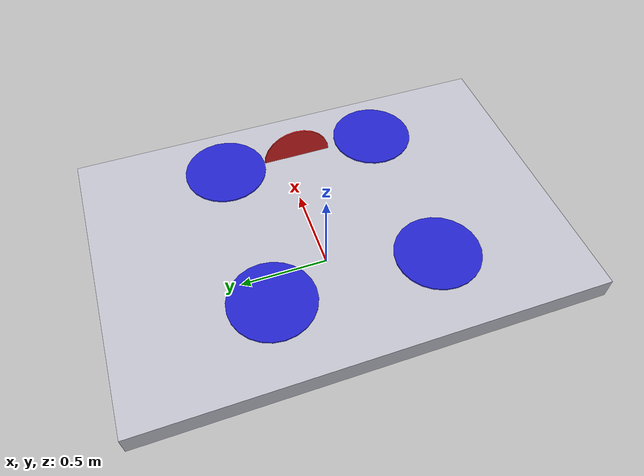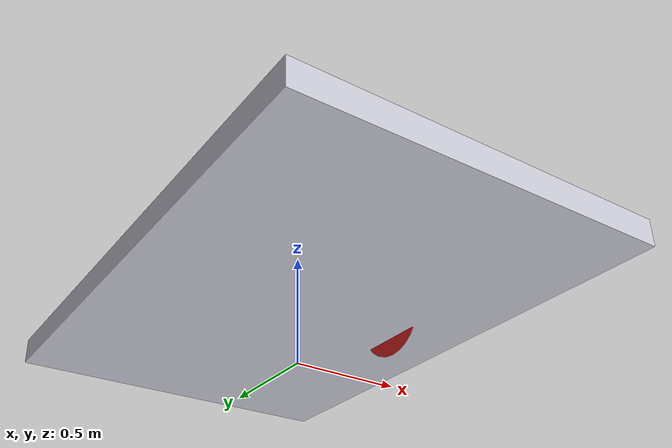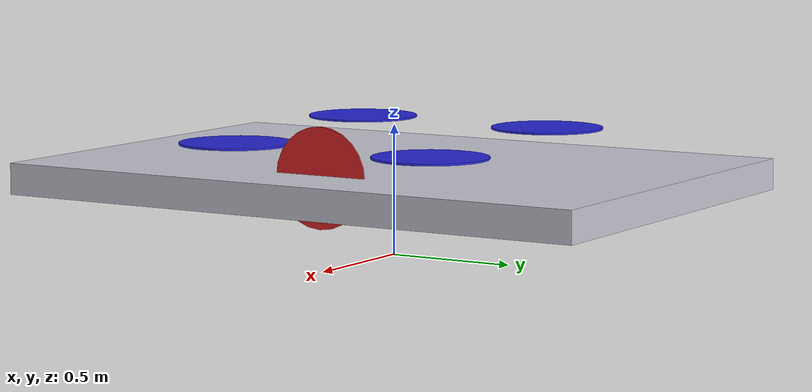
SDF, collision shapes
<?xml version="1.0"?>
<!-- Quadplane Condor: 4+1 tractor, V-tail, 7.8kg MTOW, 2.4m wingspan -->
<!-- Sub-millimeter 3D circle fitting on CAD motor mounts and spinner shaft -->
<sdf version='1.10'>
  <model name='quadplane_condor'>
    <!-- Spawn height above ground -->
    <pose>0 0 0.35 0 0 0</pose>

    <!-- BASE LINK (Fuselage, Wing, Booms & Motor Mounts from CAD)    -->
    <link name='base_link'>
      <pose>0 0 0 0 0 0</pose>
      <inertial>
        <pose>0 0 0 0 0 0</pose>
        <mass>7.8</mass>
        <inertia>
          <ixx>1.46</ixx>
          <ixy>0</ixy>
          <ixz>0</ixz>
          <iyy>1.06</iyy>
          <iyz>0</iyz>
          <izz>2.50</izz>
        </inertia>
      </inertial>

      <!-- Collision body matching Condor dimensions -->
      <collision name='base_link_collision'>
        <pose>0 0 -0.05 0 0 0</pose>
        <geometry>
          <box>
            <size>1.64 2.40 0.12</size>
          </box>
        </geometry>
        <surface>
          <contact>
            <ode>
              <kp>100000</kp>
              <kd>1.0</kd>
              <max_vel>0.1</max_vel>
              <min_depth>0.001</min_depth>
            </ode>
          </contact>
          <friction>
            <ode />
          </friction>
        </surface>
      </collision>

      <!-- Visual: Condor 3D CAD Mesh (Scale 1.0, exact CAD center alignment) -->
      <visual name='base_link_visual'>
        <pose>0.4221 0.0 -0.0050 1.5707963268 0 1.5707963268</pose>
        <geometry>
          <mesh>
            <scale>1.0 1.0 1.0</scale>
            <uri>model://quadplane_condor/meshes/quadplane_condor.dae</uri>
          </mesh>
        </geometry>
        <material>
          <ambient>0.8 0.8 0.85 1.0</ambient>
          <diffuse>0.8 0.8 0.85 1.0</diffuse>
          <specular>0.4 0.4 0.4 1.0</specular>
        </material>
      </visual>

      <gravity>1</gravity>
      <velocity_decay />
      <self_collide>0</self_collide>

      <!-- SENSORS                                                      -->
      <sensor name="imu_sensor" type="imu">
        <gz_frame_id>base_link</gz_frame_id>
        <always_on>1</always_on>
        <update_rate>250</update_rate>
        <imu>
          <angular_velocity>
            <x>
              <noise type="gaussian">
                <mean>0</mean>
                <stddev>0.0003394</stddev>
                <dynamic_bias_stddev>3.8785e-05</dynamic_bias_stddev>
                <dynamic_bias_correlation_time>1000</dynamic_bias_correlation_time>
              </noise>
            </x>
            <y>
              <noise type="gaussian">
                <mean>0</mean>
                <stddev>0.0003394</stddev>
                <dynamic_bias_stddev>3.8785e-05</dynamic_bias_stddev>
                <dynamic_bias_correlation_time>1000</dynamic_bias_correlation_time>
              </noise>
            </y>
            <z>
              <noise type="gaussian">
                <mean>0</mean>
                <stddev>0.0003394</stddev>
                <dynamic_bias_stddev>3.8785e-05</dynamic_bias_stddev>
                <dynamic_bias_correlation_time>1000</dynamic_bias_correlation_time>
              </noise>
            </z>
          </angular_velocity>
          <linear_acceleration>
            <x>
              <noise type="gaussian">
                <mean>0</mean>
                <stddev>0.004</stddev>
                <dynamic_bias_stddev>0.006</dynamic_bias_stddev>
                <dynamic_bias_correlation_time>300</dynamic_bias_correlation_time>
              </noise>
            </x>
            <y>
              <noise type="gaussian">
                <mean>0</mean>
                <stddev>0.004</stddev>
                <dynamic_bias_stddev>0.006</dynamic_bias_stddev>
                <dynamic_bias_correlation_time>300</dynamic_bias_correlation_time>
              </noise>
            </y>
            <z>
              <noise type="gaussian">
                <mean>0</mean>
                <stddev>0.004</stddev>
                <dynamic_bias_stddev>0.006</dynamic_bias_stddev>
                <dynamic_bias_correlation_time>300</dynamic_bias_correlation_time>
              </noise>
            </z>
          </linear_acceleration>
        </imu>
      </sensor>

      <sensor name="air_pressure_sensor" type="air_pressure">
        <gz_frame_id>base_link</gz_frame_id>
        <always_on>1</always_on>
        <update_rate>50</update_rate>
        <air_pressure>
          <pressure>
            <noise type="gaussian">
              <mean>0</mean>
              <stddev>0.01</stddev>
            </noise>
          </pressure>
        </air_pressure>
      </sensor>

      <sensor name="magnetometer_sensor" type="magnetometer">
        <gz_frame_id>base_link</gz_frame_id>
        <always_on>1</always_on>
        <update_rate>100</update_rate>
        <magnetometer>
          <x>
            <noise type="gaussian">
              <stddev>0.0001</stddev>
            </noise>
          </x>
          <y>
            <noise type="gaussian">
              <stddev>0.0001</stddev>
            </noise>
          </y>
          <z>
            <noise type="gaussian">
              <stddev>0.0001</stddev>
            </noise>
          </z>
        </magnetometer>
      </sensor>

      <sensor name="navsat_sensor" type="navsat">
        <gz_frame_id>base_link</gz_frame_id>
        <always_on>1</always_on>
        <update_rate>30</update_rate>
      </sensor>
    </link>

    <!-- AIRSPEED PITOT SENSOR LINK (Native GZ differential pressure) -->
    <link name="airspeed_link">
      <pose relative_to="base_link">0.52 0 0.05 0 0 0</pose>
      <inertial>
        <mass>0.005</mass>
        <inertia>
          <ixx>1e-06</ixx>
          <ixy>0</ixy>
          <ixz>0</ixz>
          <iyy>1e-06</iyy>
          <iyz>0</iyz>
          <izz>1e-06</izz>
        </inertia>
      </inertial>
      <sensor name="air_speed" type="air_speed">
        <gz_frame_id>airspeed_link</gz_frame_id>
        <pose>0 0 0 0 0 0</pose>
        <update_rate>50.0</update_rate>
        <always_on>1</always_on>
        <visualize>false</visualize>
        <air_speed>
          <noise type="gaussian">
            <mean>0</mean>
            <stddev>0.005</stddev>
          </noise>
        </air_speed>
      </sensor>
    </link>

    <joint name="airspeed_joint" type="fixed">
      <parent>base_link</parent>
      <child>airspeed_link</child>
    </joint>

    <!-- QUAD ROTOR 0: Front-Right Motor (17-inch CCW Propeller)      -->
    <!-- CAD Mount Center: X = +0.4416m, Y = -0.4236m, Z = +0.0959m   -->
    <!-- Prop diameter: 43.2cm (17 in), Radius: 0.216m                -->
    <link name='rotor_0'>
      <pose>0.4416 -0.4236 0.0959 0 0 0</pose>
      <inertial>
        <pose>0 0 0 0 0 0</pose>
        <mass>0.005</mass>
        <inertia>
          <ixx>9.75e-07</ixx>
          <ixy>0</ixy>
          <ixz>0</ixz>
          <iyy>0.000166704</iyy>
          <iyz>0</iyz>
          <izz>0.000167604</izz>
        </inertia>
      </inertial>
      <collision name='rotor_0_collision'>
        <pose>0 0 0 0 0 0</pose>
        <geometry>
          <cylinder><length>0.008</length><radius>0.216</radius></cylinder>
        </geometry>
        <surface>
          <contact><ode /></contact>
          <friction><ode /></friction>
        </surface>
      </collision>
      <visual name='rotor_0_visual'>
        <pose>0 0 0 0 0 0</pose>
        <geometry>
          <mesh>
            <scale>1.8 1.8 1.8</scale>
            <uri>model://quadplane_condor/meshes/iris_prop_ccw.dae</uri>
          </mesh>
        </geometry>
        <material>
          <ambient>0.15 0.15 0.85 1.0</ambient>
          <diffuse>0.15 0.15 0.85 1.0</diffuse>
        </material>
      </visual>
      <gravity>1</gravity>
      <velocity_decay />
      <self_collide>0</self_collide>
    </link>
    <joint name='rotor_0_joint' type='revolute'>
      <child>rotor_0</child>
      <parent>base_link</parent>
      <axis>
        <xyz>0 0 1</xyz>
        <limit>
          <lower>-1e+16</lower>
          <upper>1e+16</upper>
        </limit>
        <dynamics>
          <spring_reference>0</spring_reference>
          <spring_stiffness>0</spring_stiffness>
        </dynamics>
      </axis>
    </joint>

    <!-- QUAD ROTOR 1: Rear-Left Motor (17-inch CCW Propeller)        -->
    <!-- CAD Mount Center: X = -0.4428m, Y = +0.4192m, Z = +0.1183m   -->
    <!-- Prop diameter: 43.2cm (17 in), Radius: 0.216m                -->
    <link name='rotor_1'>
      <pose>-0.4428 0.4192 0.1183 0 0 0</pose>
      <inertial>
        <pose>0 0 0 0 0 0</pose>
        <mass>0.005</mass>
        <inertia>
          <ixx>9.75e-07</ixx>
          <ixy>0</ixy>
          <ixz>0</ixz>
          <iyy>0.000166704</iyy>
          <iyz>0</iyz>
          <izz>0.000167604</izz>
        </inertia>
      </inertial>
      <collision name='rotor_1_collision'>
        <pose>0 0 0 0 0 0</pose>
        <geometry>
          <cylinder><length>0.008</length><radius>0.216</radius></cylinder>
        </geometry>
        <surface>
          <contact><ode /></contact>
          <friction><ode /></friction>
        </surface>
      </collision>
      <visual name='rotor_1_visual'>
        <pose>0 0 0 0 0 0</pose>
        <geometry>
          <mesh>
            <scale>1.8 1.8 1.8</scale>
            <uri>model://quadplane_condor/meshes/iris_prop_ccw.dae</uri>
          </mesh>
        </geometry>
        <material>
          <ambient>0.15 0.15 0.85 1.0</ambient>
          <diffuse>0.15 0.15 0.85 1.0</diffuse>
        </material>
      </visual>
      <gravity>1</gravity>
      <velocity_decay />
      <self_collide>0</self_collide>
    </link>
    <joint name='rotor_1_joint' type='revolute'>
      <child>rotor_1</child>
      <parent>base_link</parent>
      <axis>
        <xyz>0 0 1</xyz>
        <limit>
          <lower>-1e+16</lower>
          <upper>1e+16</upper>
        </limit>
        <dynamics>
          <spring_reference>0</spring_reference>
          <spring_stiffness>0</spring_stiffness>
        </dynamics>
      </axis>
    </joint>

    <!-- QUAD ROTOR 2: Front-Left Motor (17-inch CW Propeller)        -->
    <!-- CAD Mount Center: X = +0.4416m, Y = +0.4236m, Z = +0.0959m   -->
    <!-- Prop diameter: 43.2cm (17 in), Radius: 0.216m                -->
    <link name='rotor_2'>
      <pose>0.4416 0.4236 0.0959 0 0 0</pose>
      <inertial>
        <pose>0 0 0 0 0 0</pose>
        <mass>0.005</mass>
        <inertia>
          <ixx>9.75e-07</ixx>
          <ixy>0</ixy>
          <ixz>0</ixz>
          <iyy>0.000166704</iyy>
          <iyz>0</iyz>
          <izz>0.000167604</izz>
        </inertia>
      </inertial>
      <collision name='rotor_2_collision'>
        <pose>0 0 0 0 0 0</pose>
        <geometry>
          <cylinder><length>0.008</length><radius>0.216</radius></cylinder>
        </geometry>
        <surface>
          <contact><ode /></contact>
          <friction><ode /></friction>
        </surface>
      </collision>
      <visual name='rotor_2_visual'>
        <pose>0 0 0 0 0 0</pose>
        <geometry>
          <mesh>
            <scale>1.8 1.8 1.8</scale>
            <uri>model://quadplane_condor/meshes/iris_prop_cw.dae</uri>
          </mesh>
        </geometry>
        <material>
          <ambient>0.15 0.15 0.85 1.0</ambient>
          <diffuse>0.15 0.15 0.85 1.0</diffuse>
        </material>
      </visual>
      <gravity>1</gravity>
      <velocity_decay />
      <self_collide>0</self_collide>
    </link>
    <joint name='rotor_2_joint' type='revolute'>
      <child>rotor_2</child>
      <parent>base_link</parent>
      <axis>
        <xyz>0 0 1</xyz>
        <limit>
          <lower>-1e+16</lower>
          <upper>1e+16</upper>
        </limit>
        <dynamics>
          <spring_reference>0</spring_reference>
          <spring_stiffness>0</spring_stiffness>
        </dynamics>
      </axis>
    </joint>

    <!-- QUAD ROTOR 3: Rear-Right Motor (17-inch CW Propeller)        -->
    <!-- CAD Mount Center: X = -0.4428m, Y = -0.4192m, Z = +0.1183m   -->
    <!-- Prop diameter: 43.2cm (17 in), Radius: 0.216m                -->
    <link name='rotor_3'>
      <pose>-0.4428 -0.4192 0.1183 0 0 0</pose>
      <inertial>
        <pose>0 0 0 0 0 0</pose>
        <mass>0.005</mass>
        <inertia>
          <ixx>9.75e-07</ixx>
          <ixy>0</ixy>
          <ixz>0</ixz>
          <iyy>0.000166704</iyy>
          <iyz>0</iyz>
          <izz>0.000167604</izz>
        </inertia>
      </inertial>
      <collision name='rotor_3_collision'>
        <pose>0 0 0 0 0 0</pose>
        <geometry>
          <cylinder><length>0.008</length><radius>0.216</radius></cylinder>
        </geometry>
        <surface>
          <contact><ode /></contact>
          <friction><ode /></friction>
        </surface>
      </collision>
      <visual name='rotor_3_visual'>
        <pose>0 0 0 0 0 0</pose>
        <geometry>
          <mesh>
            <scale>1.8 1.8 1.8</scale>
            <uri>model://quadplane_condor/meshes/iris_prop_cw.dae</uri>
          </mesh>
        </geometry>
        <material>
          <ambient>0.15 0.15 0.85 1.0</ambient>
          <diffuse>0.15 0.15 0.85 1.0</diffuse>
        </material>
      </visual>
      <gravity>1</gravity>
      <velocity_decay />
      <self_collide>0</self_collide>
    </link>
    <joint name='rotor_3_joint' type='revolute'>
      <child>rotor_3</child>
      <parent>base_link</parent>
      <axis>
        <xyz>0 0 1</xyz>
        <limit>
          <lower>-1e+16</lower>
          <upper>1e+16</upper>
        </limit>
        <dynamics>
          <spring_reference>0</spring_reference>
          <spring_stiffness>0</spring_stiffness>
        </dynamics>
      </axis>
    </joint>

    <!-- TRACTOR/PULLER MOTOR: 15-inch Forward Propeller on Nose Hub  -->
    <!-- CAD Nose shaft location: X = +0.5256m, Y = 0.0m, Z = 0.0m     -->
    <!-- Prop diameter: 38.1cm (15 in), Radius: 0.190m                -->
    <!-- Turning direction: CW, spins on X axis, pulls forward along +X-->
    <link name='rotor_puller'>
      <pose>0.5256 0.0 0.0 0 1.5707963268 0</pose>
      <inertial>
        <pose>0 0 0 0 0 0</pose>
        <mass>0.005</mass>
        <inertia>
          <ixx>9.75e-07</ixx>
          <ixy>0</ixy>
          <ixz>0</ixz>
          <iyy>0.000166704</iyy>
          <iyz>0</iyz>
          <izz>0.000167604</izz>
        </inertia>
      </inertial>
      <collision name='rotor_puller_collision'>
        <pose>0.0 0 -0.01 0 0 0</pose>
        <geometry>
          <cylinder><length>0.008</length><radius>0.190</radius></cylinder>
        </geometry>
        <surface>
          <contact><ode /></contact>
          <friction><ode /></friction>
        </surface>
      </collision>
      <visual name='rotor_puller_visual'>
        <pose>0 0 -0.01 0 0 0</pose>
        <geometry>
          <mesh>
            <scale>1.5 1.5 1.5</scale>
            <uri>model://quadplane_condor/meshes/iris_prop_ccw.dae</uri>
          </mesh>
        </geometry>
        <material>
          <ambient>0.9 0.15 0.15 1.0</ambient>
          <diffuse>0.9 0.15 0.15 1.0</diffuse>
        </material>
      </visual>
      <gravity>1</gravity>
      <velocity_decay />
      <self_collide>0</self_collide>
    </link>
    <joint name='rotor_puller_joint' type='revolute'>
      <pose>0.0 0 0.0 0 -1.5707963268 0</pose>
      <child>rotor_puller</child>
      <parent>base_link</parent>
      <axis>
        <xyz>1 0 0</xyz>
        <limit>
          <lower>-1e+16</lower>
          <upper>1e+16</upper>
        </limit>
        <dynamics>
          <spring_reference>0</spring_reference>
          <spring_stiffness>0</spring_stiffness>
        </dynamics>
      </axis>
    </joint>

    <!-- V-TAIL CONTROL SURFACES (RUDDERVATORS)                       -->
    <!-- CAD Hinge lines: X = -0.8655m, Y = ±0.1595m, Z = +0.1539m    -->
    <link name="left_vtail">
      <inertial>
        <mass>0.00000001</mass>
        <inertia>
          <ixx>0.000001</ixx>
          <ixy>0.0</ixy>
          <iyy>0.000001</iyy>
          <ixz>0.0</ixz>
          <iyz>0.0</iyz>
          <izz>0.000001</izz>
        </inertia>
        <pose>-0.8655 0.1598 0.1542 0.00 0 0.0</pose>
      </inertial>
    </link>

    <link name="right_vtail">
      <inertial>
        <mass>0.00000001</mass>
        <inertia>
          <ixx>0.000001</ixx>
          <ixy>0.0</ixy>
          <iyy>0.000001</iyy>
          <ixz>0.0</ixz>
          <iyz>0.0</iyz>
          <izz>0.000001</izz>
        </inertia>
        <pose>-0.8655 -0.1591 0.1536 0.00 0 0.0</pose>
      </inertial>
    </link>

    <!-- V-tail servo joints -->
    <joint name='servo_0' type='revolute'>
      <parent>base_link</parent>
      <child>left_vtail</child>
      <pose>-0.8655 0.1598 0.1542 0 0 0</pose>
      <axis>
        <xyz>0 1 0</xyz>
        <limit>
          <lower>-0.78</lower>
          <upper>0.78</upper>
        </limit>
        <dynamics>
          <damping>1.000</damping>
        </dynamics>
      </axis>
      <physics>
        <ode>
          <implicit_spring_damper>1</implicit_spring_damper>
        </ode>
      </physics>
    </joint>

    <joint name='servo_1' type='revolute'>
      <parent>base_link</parent>
      <child>right_vtail</child>
      <pose>-0.8655 -0.1591 0.1536 0 0 0</pose>
      <axis>
        <xyz>0 1 0</xyz>
        <limit>
          <lower>-0.78</lower>
          <upper>0.78</upper>
        </limit>
        <dynamics>
          <damping>1.000</damping>
        </dynamics>
      </axis>
      <physics>
        <ode>
          <implicit_spring_damper>1</implicit_spring_damper>
        </ode>
      </physics>
    </joint>

    <!-- AERODYNAMICS: LIFT/DRAG PLUGINS                              -->

    <!-- Left wing panel lift/drag -->
    <plugin filename="gz-sim-lift-drag-system" name="gz::sim::systems::LiftDrag">
      <a0>0.06</a0>
      <cla>4.86</cla>
      <cda>0.64</cda>
      <cma>0.0</cma>
      <alpha_stall>0.30</alpha_stall>
      <cla_stall>-3.85</cla_stall>
      <cda_stall>-0.92</cda_stall>
      <cma_stall>0</cma_stall>
      <cp>0.0 0.60 0.05</cp>
      <area>0.42</area>
      <air_density>1.2041</air_density>
      <forward>1 0 0</forward>
      <upward>0 0 1</upward>
      <link_name>base_link</link_name>
      <control_joint_name>servo_0</control_joint_name>
      <control_joint_rad_to_cl>-0.5</control_joint_rad_to_cl>
    </plugin>

    <!-- Joint position controller for left V-tail servo -->
    <plugin
      filename="gz-sim-joint-position-controller-system"
      name="gz::sim::systems::JointPositionController">
      <joint_name>servo_0</joint_name>
      <sub_topic>servo_0</sub_topic>
    </plugin>

    <!-- Right wing panel lift/drag -->
    <plugin filename="gz-sim-lift-drag-system" name="gz::sim::systems::LiftDrag">
      <a0>0.06</a0>
      <cla>4.86</cla>
      <cda>0.64</cda>
      <cma>0.0</cma>
      <alpha_stall>0.30</alpha_stall>
      <cla_stall>-3.85</cla_stall>
      <cda_stall>-0.92</cda_stall>
      <cma_stall>0</cma_stall>
      <cp>0.0 -0.60 0.05</cp>
      <area>0.42</area>
      <air_density>1.2041</air_density>
      <forward>1 0 0</forward>
      <upward>0 0 1</upward>
      <link_name>base_link</link_name>
      <control_joint_name>servo_1</control_joint_name>
      <control_joint_rad_to_cl>-0.5</control_joint_rad_to_cl>
    </plugin>

    <!-- Joint position controller for right V-tail servo -->
    <plugin
      filename="gz-sim-joint-position-controller-system"
      name="gz::sim::systems::JointPositionController">
      <joint_name>servo_1</joint_name>
      <sub_topic>servo_1</sub_topic>
    </plugin>

    <!-- Left V-tail surface lift/drag -->
    <plugin filename="gz-sim-lift-drag-system" name="gz::sim::systems::LiftDrag">
      <a0>-0.15</a0>
      <cla>4.75</cla>
      <cda>0.64</cda>
      <cma>0.0</cma>
      <alpha_stall>0.34</alpha_stall>
      <cla_stall>-3.85</cla_stall>
      <cda_stall>-0.92</cda_stall>
      <cma_stall>0</cma_stall>
      <cp>-0.8655 0.1598 0.1542</cp>
      <area>0.06</area>
      <air_density>1.2041</air_density>
      <forward>1 0 0</forward>
      <upward>0 0 1</upward>
      <link_name>base_link</link_name>
      <control_joint_name>servo_0</control_joint_name>
      <control_joint_rad_to_cl>-10.0</control_joint_rad_to_cl>
    </plugin>

    <!-- Right V-tail surface lift/drag -->
    <plugin filename="gz-sim-lift-drag-system" name="gz::sim::systems::LiftDrag">
      <a0>-0.15</a0>
      <cla>4.75</cla>
      <cda>0.64</cda>
      <cma>0.0</cma>
      <alpha_stall>0.34</alpha_stall>
      <cla_stall>-3.85</cla_stall>
      <cda_stall>-0.92</cda_stall>
      <cma_stall>0</cma_stall>
      <cp>-0.8655 -0.1591 0.1536</cp>
      <area>0.06</area>
      <air_density>1.2041</air_density>
      <forward>1 0 0</forward>
      <upward>0 0 1</upward>
      <link_name>base_link</link_name>
      <control_joint_name>servo_1</control_joint_name>
      <control_joint_rad_to_cl>-10.0</control_joint_rad_to_cl>
    </plugin>

    <!-- MOTOR PLUGINS                                                -->

    <!-- Quad Motor 0: Front-Right, CCW (17-inch propeller) -->
    <plugin filename="gz-sim-multicopter-motor-model-system"
      name="gz::sim::systems::MulticopterMotorModel">
      <jointName>rotor_0_joint</jointName>
      <linkName>rotor_0</linkName>
      <turningDirection>ccw</turningDirection>
      <timeConstantUp>0.0125</timeConstantUp>
      <timeConstantDown>0.025</timeConstantDown>
      <maxRotVelocity>1500</maxRotVelocity>
      <motorConstant>2.5e-05</motorConstant>
      <momentConstant>0.06</momentConstant>
      <commandSubTopic>command/motor_speed</commandSubTopic>
      <motorNumber>0</motorNumber>
      <rotorDragCoefficient>0.000106428</rotorDragCoefficient>
      <rollingMomentCoefficient>1e-06</rollingMomentCoefficient>
      <rotorVelocitySlowdownSim>20</rotorVelocitySlowdownSim>
      <motorType>velocity</motorType>
    </plugin>

    <!-- Quad Motor 1: Rear-Left, CCW (17-inch propeller) -->
    <plugin filename="gz-sim-multicopter-motor-model-system"
      name="gz::sim::systems::MulticopterMotorModel">
      <jointName>rotor_1_joint</jointName>
      <linkName>rotor_1</linkName>
      <turningDirection>ccw</turningDirection>
      <timeConstantUp>0.0125</timeConstantUp>
      <timeConstantDown>0.025</timeConstantDown>
      <maxRotVelocity>1500</maxRotVelocity>
      <motorConstant>2.5e-05</motorConstant>
      <momentConstant>0.06</momentConstant>
      <commandSubTopic>command/motor_speed</commandSubTopic>
      <motorNumber>1</motorNumber>
      <rotorDragCoefficient>0.000106428</rotorDragCoefficient>
      <rollingMomentCoefficient>1e-06</rollingMomentCoefficient>
      <rotorVelocitySlowdownSim>20</rotorVelocitySlowdownSim>
      <motorType>velocity</motorType>
    </plugin>

    <!-- Quad Motor 2: Front-Left, CW (17-inch propeller) -->
    <plugin filename="gz-sim-multicopter-motor-model-system"
      name="gz::sim::systems::MulticopterMotorModel">
      <jointName>rotor_2_joint</jointName>
      <linkName>rotor_2</linkName>
      <turningDirection>cw</turningDirection>
      <timeConstantUp>0.0125</timeConstantUp>
      <timeConstantDown>0.025</timeConstantDown>
      <maxRotVelocity>1500</maxRotVelocity>
      <motorConstant>2.5e-05</motorConstant>
      <momentConstant>0.06</momentConstant>
      <commandSubTopic>command/motor_speed</commandSubTopic>
      <motorNumber>2</motorNumber>
      <rotorDragCoefficient>0.000106428</rotorDragCoefficient>
      <rollingMomentCoefficient>1e-06</rollingMomentCoefficient>
      <rotorVelocitySlowdownSim>20</rotorVelocitySlowdownSim>
      <motorType>velocity</motorType>
    </plugin>

    <!-- Quad Motor 3: Rear-Right, CW (17-inch propeller) -->
    <plugin filename="gz-sim-multicopter-motor-model-system"
      name="gz::sim::systems::MulticopterMotorModel">
      <jointName>rotor_3_joint</jointName>
      <linkName>rotor_3</linkName>
      <turningDirection>cw</turningDirection>
      <timeConstantUp>0.0125</timeConstantUp>
      <timeConstantDown>0.025</timeConstantDown>
      <maxRotVelocity>1500</maxRotVelocity>
      <motorConstant>2.5e-05</motorConstant>
      <momentConstant>0.06</momentConstant>
      <commandSubTopic>command/motor_speed</commandSubTopic>
      <motorNumber>3</motorNumber>
      <rotorDragCoefficient>0.000106428</rotorDragCoefficient>
      <rollingMomentCoefficient>1e-06</rollingMomentCoefficient>
      <rotorVelocitySlowdownSim>20</rotorVelocitySlowdownSim>
      <motorType>velocity</motorType>
    </plugin>

    <!-- Tractor/Puller Motor: 15-inch Forward Propeller on Nose Hub -->
    <plugin
      filename="gz-sim-multicopter-motor-model-system"
      name="gz::sim::systems::MulticopterMotorModel">
      <jointName>rotor_puller_joint</jointName>
      <linkName>rotor_puller</linkName>
      <turningDirection>cw</turningDirection>
      <timeConstantUp>0.0125</timeConstantUp>
      <timeConstantDown>0.025</timeConstantDown>
      <maxRotVelocity>3500</maxRotVelocity>
      <motorConstant>8.54858e-06</motorConstant>
      <momentConstant>0.01</momentConstant>
      <commandSubTopic>command/motor_speed</commandSubTopic>
      <motorNumber>4</motorNumber>
      <rotorDragCoefficient>0.000106428</rotorDragCoefficient>
      <rollingMomentCoefficient>1e-06</rollingMomentCoefficient>
      <rotorVelocitySlowdownSim>20</rotorVelocitySlowdownSim>
      <motorType>velocity</motorType>
    </plugin>

    <static>0</static>
  </model>
</sdf>
